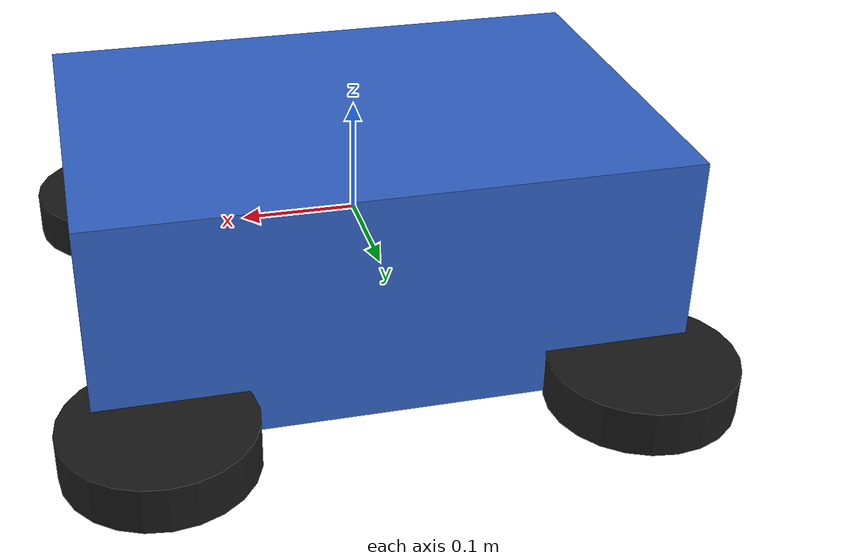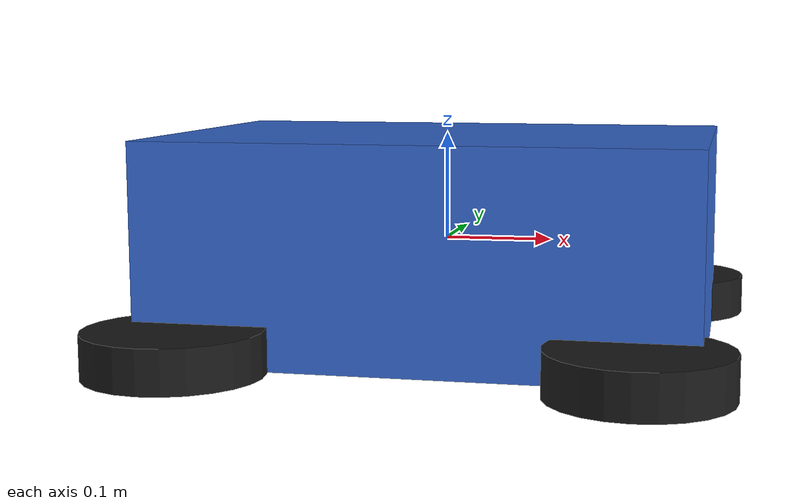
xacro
<?xml version="1.0"?>
  <robot xmlns:xacro="http://www.ros.org/wiki/xacro" name="mecanum_robot">

    <!-- ===== 车体：一个盒子 ===== -->
    <link name="base_link">
      <visual>
        <geometry>
          <box size="0.50 0.35 0.20"/>
        </geometry>
        <material name="blue">
          <color rgba="0.2 0.4 0.8 1.0"/>
        </material>
      </visual>
      <collision>
        <geometry>
          <box size="0.50 0.35 0.20"/>
        </geometry>
      </collision>
      <inertial>
        <mass value="5.0"/>
        <inertia ixx="0.10" ixy="0" ixz="0" iyy="0.15" iyz="0" izz="0.20"/>
      </inertial>
    </link>

    <!-- ===== 四个装饰轮子（fixed joint、纯视觉） ===== -->
    <!-- 左前轮 -->
    <link name="wheel_fl">
      <visual>
        <geometry>
          <cylinder radius="0.08" length="0.04"/>
        </geometry>
        <material name="black">
          <color rgba="0.1 0.1 0.1 1.0"/>
        </material>
      </visual>
      <inertial>
        <mass value="0.1"/>
        <inertia ixx="0.001" ixy="0" ixz="0" iyy="0.001" iyz="0" izz="0.001"/>
      </inertial>
    </link>
    <joint name="wheel_fl_joint" type="fixed">
      <parent link="base_link"/>
      <child link="wheel_fl"/>
      <origin xyz="0.20 0.20 -0.08" rpy="0 0 0"/>
    </joint>

    <!-- 右前轮 -->
    <link name="wheel_fr">
      <visual>
        <geometry>
          <cylinder radius="0.08" length="0.04"/>
        </geometry>
        <material name="black"/>
      </visual>
      <inertial>
        <mass value="0.1"/>
        <inertia ixx="0.001" ixy="0" ixz="0" iyy="0.001" iyz="0" izz="0.001"/>
      </inertial>
    </link>
    <joint name="wheel_fr_joint" type="fixed">
      <parent link="base_link"/>
      <child link="wheel_fr"/>
      <origin xyz="0.20 -0.20 -0.08" rpy="0 0 0"/>
    </joint>

    <!-- 左后轮 -->
    <link name="wheel_rl">
      <visual>
        <geometry>
          <cylinder radius="0.08" length="0.04"/>
        </geometry>
        <material name="black"/>
      </visual>
      <inertial>
        <mass value="0.1"/>
        <inertia ixx="0.001" ixy="0" ixz="0" iyy="0.001" iyz="0" izz="0.001"/>
      </inertial>
    </link>
    <joint name="wheel_rl_joint" type="fixed">
      <parent link="base_link"/>
      <child link="wheel_rl"/>
      <origin xyz="-0.20 0.20 -0.08" rpy="0 0 0"/>
    </joint>

    <!-- 右后轮 -->
    <link name="wheel_rr">
      <visual>
        <geometry>
          <cylinder radius="0.08" length="0.04"/>
        </geometry>
        <material name="black"/>
      </visual>
      <inertial>
        <mass value="0.1"/>
        <inertia ixx="0.001" ixy="0" ixz="0" iyy="0.001" iyz="0" izz="0.001"/>
      </inertial>
    </link>
    <joint name="wheel_rr_joint" type="fixed">
      <parent link="base_link"/>
      <child link="wheel_rr"/>
      <origin xyz="-0.20 -0.20 -0.08" rpy="0 0 0"/>
    </joint>

    <!-- ===== 全向运动插件 ===== -->
    <gazebo>
      <plugin name="omni_drive" filename="libgazebo_ros_planar_move.so">
        <commandTopic>cmd_vel</commandTopic>
        <odometryTopic>odom</odometryTopic>
        <odometryFrame>odom</odometryFrame>
        <robotBaseFrame>base_link</robotBaseFrame>
        <odometryRate>100.0</odometryRate>
      </plugin>
    </gazebo>

  </robot>
